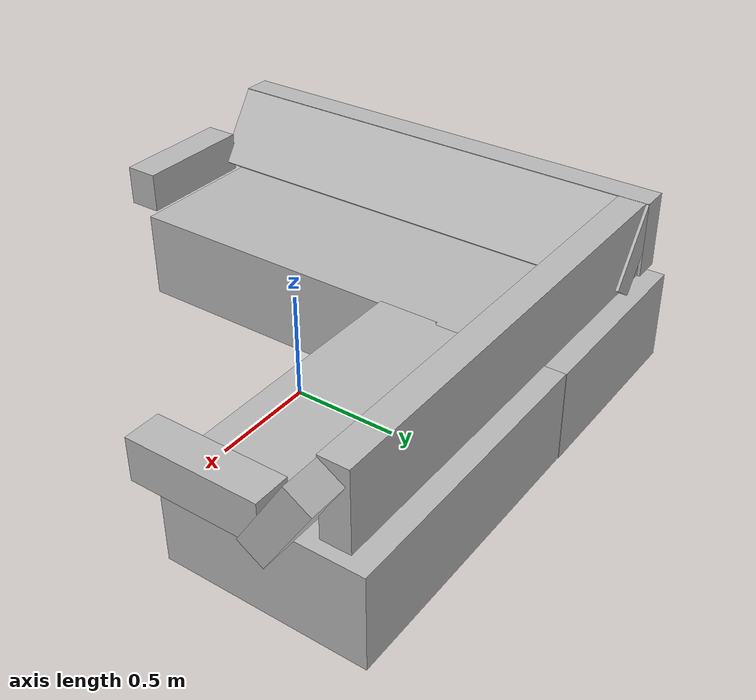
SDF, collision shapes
<?xml version="1.0" ?>
<sdf version="1.6">
  <model name="aws_robomaker_residential_Sofa_01">
    <link name="link">

      <inertial>
        <mass>72.5</mass>
      </inertial>

      <collision name="aws_sofac_01_collision_collider_box">
        <pose>-0.726905 0.021091 0.213744 0.0 -0.0 0.0</pose>
        <geometry>
          <box>
            <size>0.93089 2.278346 0.427889</size>
          </box>
        </geometry>
      </collision>
      <collision name="aws_sofac_01_collision_collider_box.001">
        <pose>0.402231 0.701816 0.213744 0.0 -0.0 0.0</pose>
        <geometry>
          <box>
            <size>1.367418 0.911841 0.427889</size>
          </box>
        </geometry>
      </collision>
      <collision name="aws_sofac_01_collision_collider_box.002">
        <pose>-1.06583 0.013177 0.674886 0.0 -0.0 0.0</pose>
        <geometry>
          <box>
            <size>0.128322 2.211195 0.351842</size>
          </box>
        </geometry>
      </collision>
      <collision name="aws_sofac_01_collision_collider_box.003">
        <pose>-0.007498 1.040782 0.674892 0.0 -0.0 -1.570796</pose>
        <geometry>
          <box>
            <size>0.128322 2.189046 0.35052</size>
          </box>
        </geometry>
      </collision>
      <collision name="aws_sofac_01_collision_collider_box.004">
        <pose>-0.944728 0.013177 0.653954 0.0 -0.60825 -0.0</pose>
        <geometry>
          <box>
            <size>0.12829 2.211195 0.387084</size>
          </box>
        </geometry>
      </collision>
      <collision name="aws_sofac_01_collision_collider_box.005">
        <pose>0.14742 0.929551 0.644881 0.0 -0.571526 -1.570796</pose>
        <geometry>
          <box>
            <size>0.12829 2.211195 0.387084</size>
          </box>
        </geometry>
      </collision>
      <collision name="aws_sofac_01_collision_collider_box.006">
        <pose>-0.548079 -1.144796 0.568667 0.0 -0.0 0.0</pose>
        <geometry>
          <box>
            <size>0.57473 0.157525 0.18946</size>
          </box>
        </geometry>
      </collision>
      <collision name="aws_sofac_01_collision_collider_box.007">
        <pose>1.131572 0.539676 0.56771 0.0 -0.0 -1.570796</pose>
        <geometry>
          <box>
            <size>0.57473 0.157525 0.18946</size>
          </box>
        </geometry>
      </collision>
      <visual name="visual">
        <geometry>
          <mesh>
            <uri>model://aws_robomaker_residential_Sofa_01/meshes/aws_Sofa_01_visual.DAE</uri>
          </mesh>
        </geometry>
        <meta> <layer> 1 </layer></meta>
      </visual>
    </link>
  </model>
</sdf>
